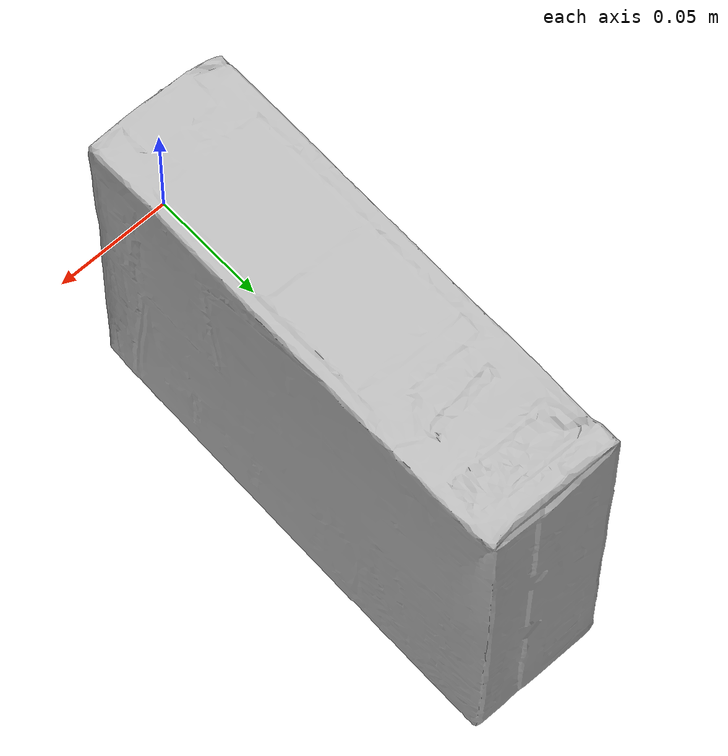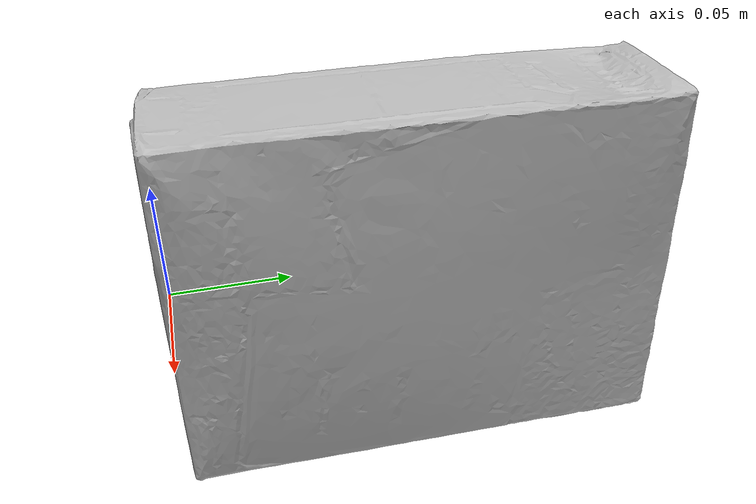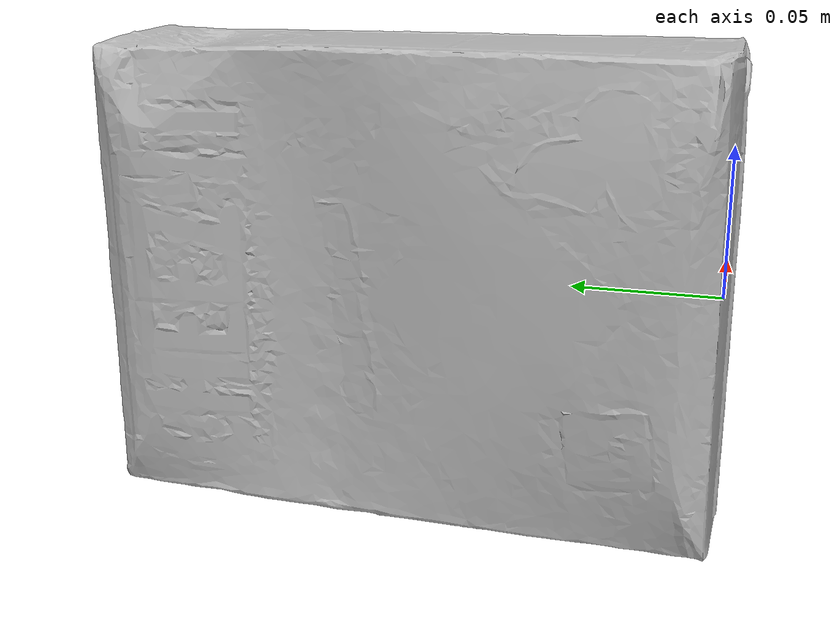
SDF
<?xml version='1.0'?>
<sdf version="1.4">
  <model name="cracker">
    <pose>0 0 0  0 0 0</pose>
    <static>0</static>
    <link name="body">
      <inertial>
	<pose>0 0.105 0  0 0 0</pose>
          <mass>0.411</mass>
          <inertia>
            <ixx>0.002365</ixx>
            <ixy>0.000000</ixy>
            <ixz>0.000000</ixz>
            <iyy>0.000978</iyy>
            <iyz>0.000000</iyz>
            <izz>0.001634</izz>
          </inertia>
      </inertial>
      <collision name="collision">
        <pose>0 0.10 0  0 0 0</pose>
	<geometry>
          <box>
	    <size>0.06 0.21 0.158</size>
  	  </box>
        </geometry>
        <surface>
            <friction>
              <ode>
                <mu>30.0</mu>
                <mu2>30.0</mu2>
              </ode>
            </friction>
            <contact>
              <ode>
                <kp>1000000.0</kp>
                <kd>100.0</kd>
                <max_vel>1.0</max_vel>
                <min_depth>0.002</min_depth>
              </ode>
            </contact>
        </surface>
      </collision>
      <visual name="visual">
        <geometry>
          <mesh>
	    <uri>model://cracker/meshes/cracker.obj</uri>
	    <scale>1.0 1.0 1.0</scale>
          </mesh>
        </geometry>
      </visual>
      <velocity_decay>
        <linear>0.000000</linear>
        <angular>0.000000</angular>
      </velocity_decay>
      <self_collide>0</self_collide>
      <kinematic>0</kinematic>
      <gravity>1</gravity>
    </link>
  </model>
</sdf>
